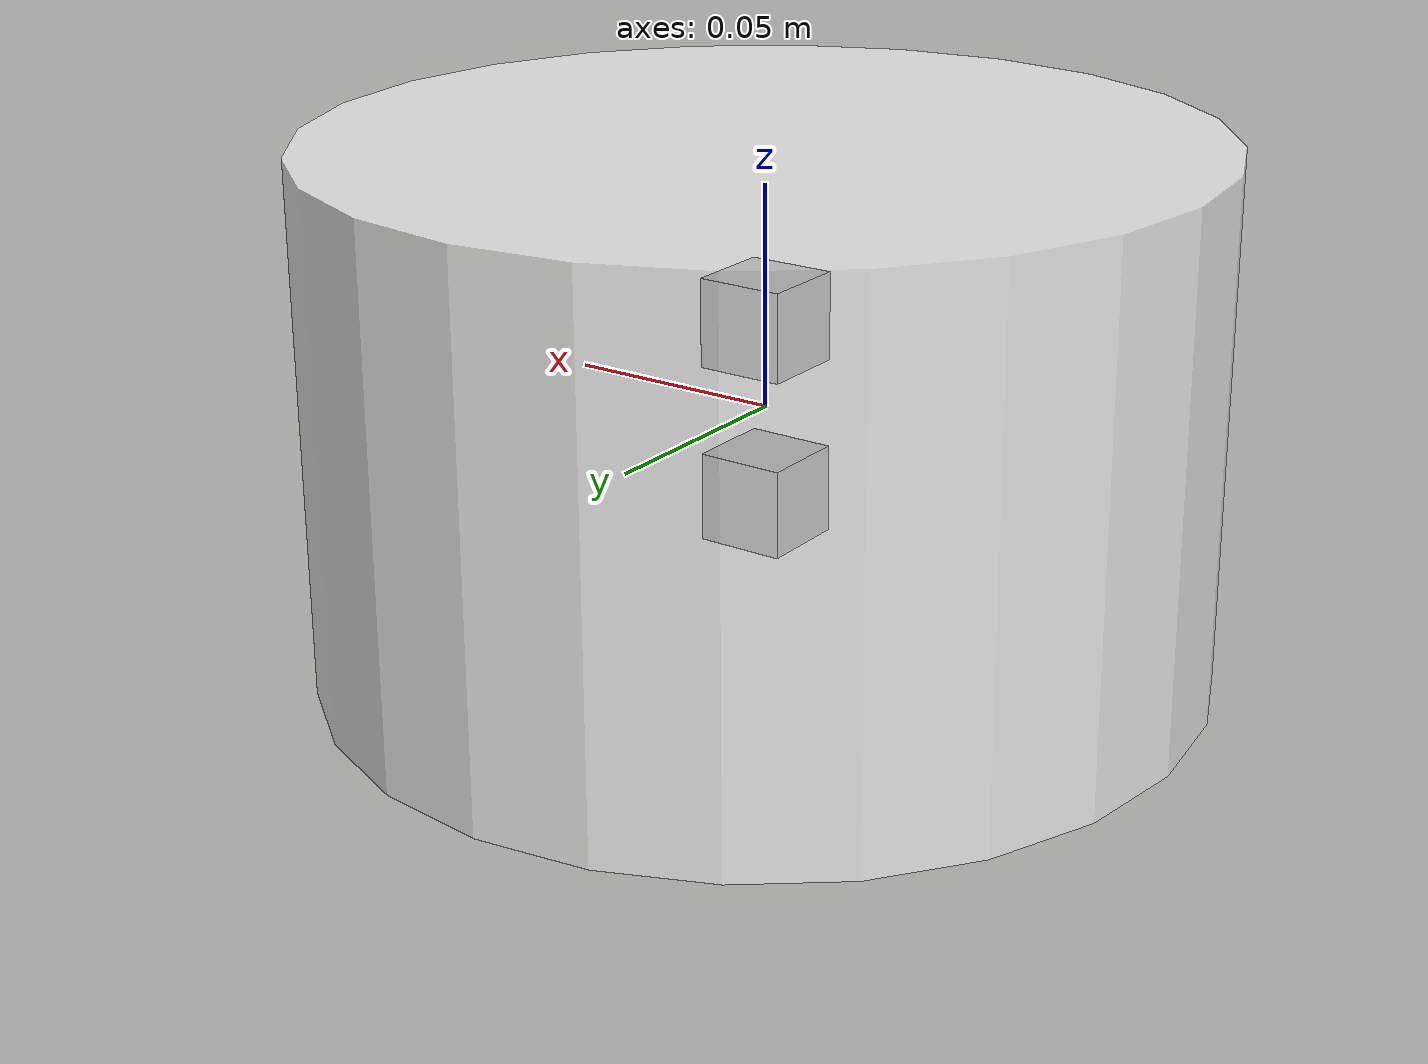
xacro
<?xml version="1.0"?>
<robot xmlns:xacro="http://www.ros.org/wiki/xacro" name="first_robot">

	<!-- 1. 惯性矩阵宏模板定义 -->
	<xacro:macro name="cylinder_inertia" params="m r h">
		<inertial>
			<mass value="${m}" />
			<inertia ixx="${(m/12)*(3*r*r + h*h)}" ixy="0" ixz="0"
			         iyy="${(m/12)*(3*r*r + h*h)}" iyz="0"
			         izz="${(m/2)*(r*r)}" />
		</inertial>
	</xacro:macro>

	<xacro:macro name="box_inertia" params="m w h d">
		<inertial>
			<mass value="${m}" />
			<inertia ixx="${(m/12) * (h*h + d*d)}" ixy="0.0" ixz="0.0"
			         iyy="${(m/12) * (w*w + d*d)}" iyz="0.0"
			         izz="${(m/12) * (w*w + h*h)}" />
		</inertial>
	</xacro:macro>

	<!-- 2. base 模块（补齐 collision 与 inertial） -->
	<xacro:macro name="base_link" params="length radius">
		<link name="base_link">
			<!-- 外观描述 -->
			<visual>
				<origin xyz="0 0 0" rpy="0 0 0"/>
				<geometry>
					<cylinder radius="${radius}" length="${length}"/>
				</geometry>
				<material name="white">
					<color rgba="1.0 1.0 1.0 0.8"/>
				</material>
			</visual>
			<!-- 碰撞描述（必须与 visual 尺寸一致） -->
			<collision>
				<origin xyz="0 0 0" rpy="0 0 0"/>
				<geometry>
					<cylinder radius="${radius}" length="${length}"/>
				</geometry>
			</collision>
			<!-- 惯性与质量（质量 1.0 kg） -->
			<xacro:cylinder_inertia m="1.0" r="${radius}" h="${length}" />
		</link>
	</xacro:macro>

	<!-- 3. IMU 模块（补齐 collision 与 inertial） -->
	<xacro:macro name="imu_link" params="imu_name xyz">
		<link name="${imu_name}_link">
			<visual>
				<origin xyz="0 0 0" rpy="0 0 0"/>
				<geometry>
					<box size="0.02 0.02 0.02"/>
				</geometry>
				<material name="black">
					<color rgba="0 0 0 1.0"/>
				</material>
			</visual>
			<collision>
				<origin xyz="0 0 0" rpy="0 0 0"/>
				<geometry>
					<box size="0.02 0.02 0.02"/>
				</geometry>
			</collision>
			<!-- IMU 质量设为 0.05 kg -->
			<xacro:box_inertia m="0.05" w="0.02" h="0.02" d="0.02" />
		</link>

		<joint name="${imu_name}_joint" type="fixed">
			<parent link="base_link"/>
			<child link="${imu_name}_link"/>
			<origin xyz="${xyz}" />
		</joint>
	</xacro:macro>

	<!-- 4. 实例化调用 -->
	<xacro:base_link length="0.12" radius="0.1" />
	<xacro:imu_link imu_name="imu_up" xyz="0 0 0.02" />
	<xacro:imu_link imu_name="imu_down" xyz="0 0 -0.02" />

</robot>
